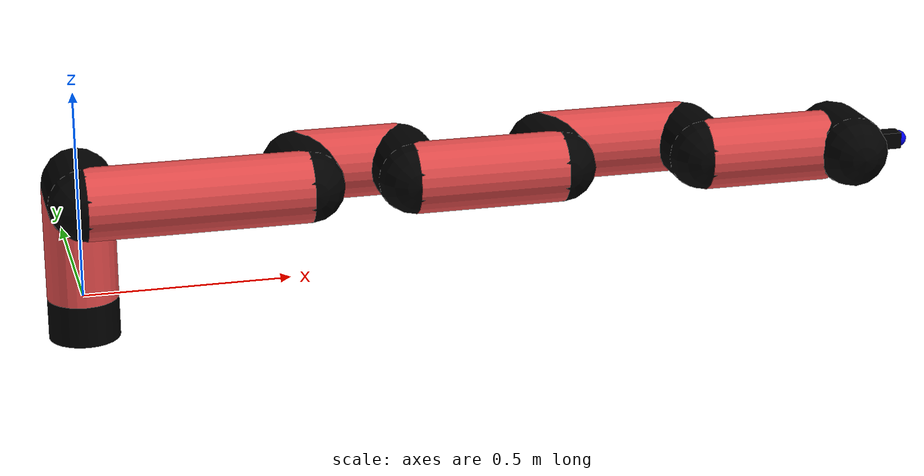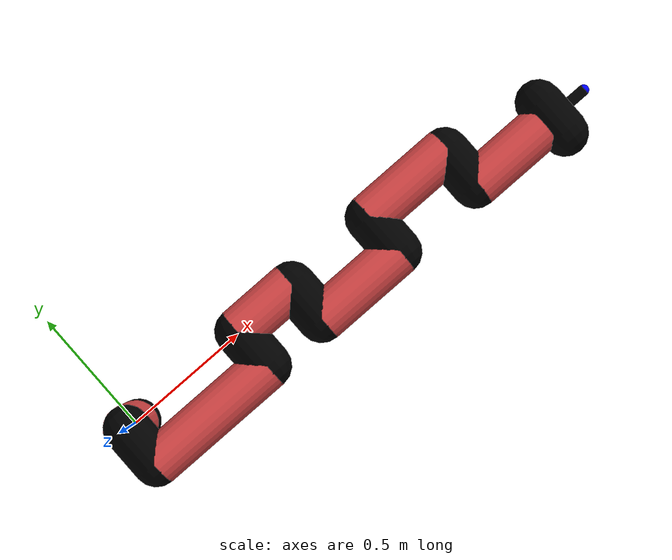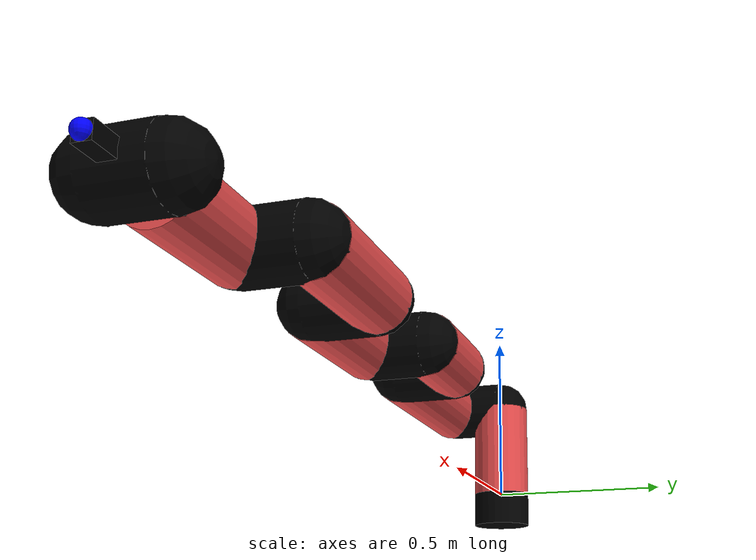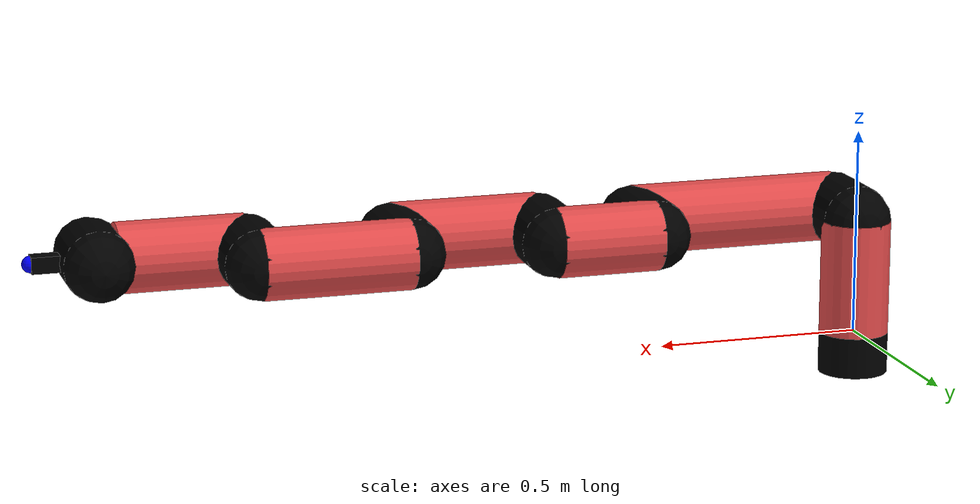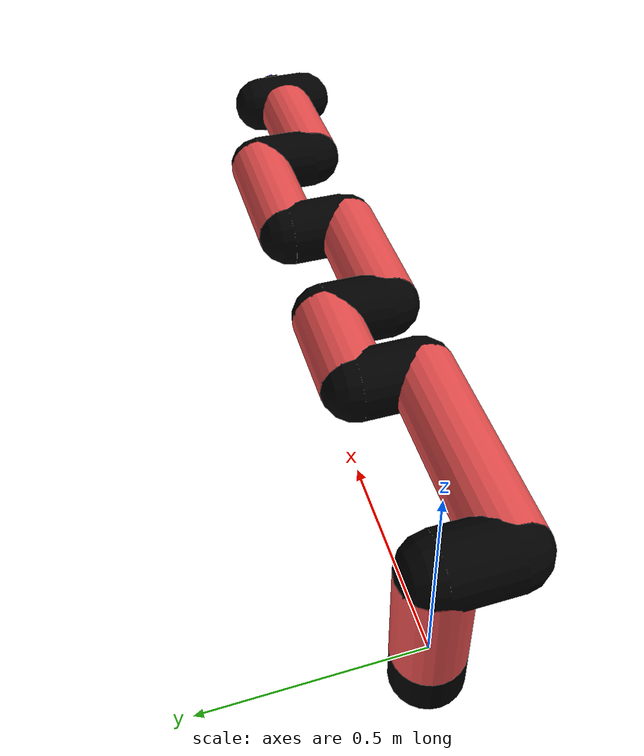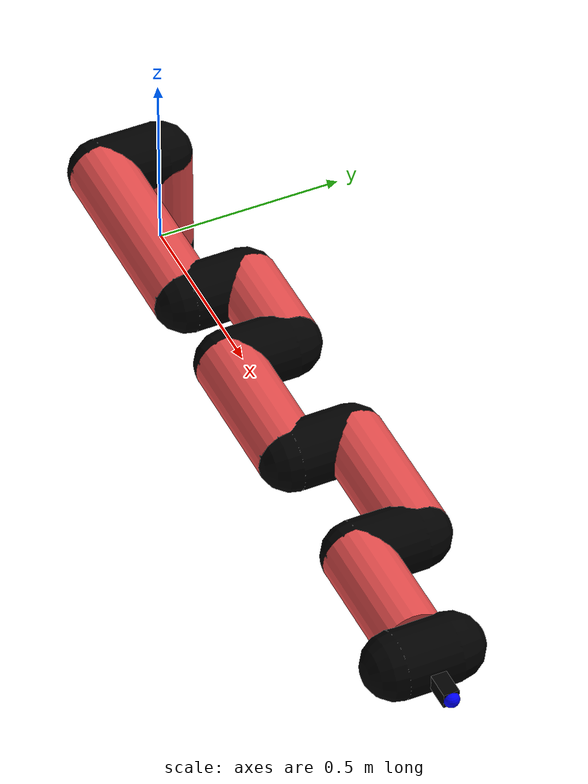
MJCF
<mujoco model="manipulator">
		<compiler angle="degree" coordinate="local" inertiafromgeom="auto" meshdir="meshes/"/>
		<option gravity="0 0 0" integrator="RK4" iterations="30" timestep="0.01"/>

		<default>
		<joint armature="1" limited="true" stiffness="10" damping="15" frictionloss="5.0"/>
		<geom conaffinity="1" condim="3" contype="1" friction=".5 .1 .1" margin="0.002"/>
		<motor ctrllimited="true"/>
		<position ctrllimited="true"/>
		</default>

		<asset>
		<texture builtin="gradient" height="100" rgb1="1.0 1.0 1.0" rgb2="1.0 1.0 1.0" type="skybox" width="100"/>
		<texture builtin="flat" height="32" name="arm_tex" rgb1="0.9 0.3 0.3" type="2d" width="32"/>
		<texture builtin="flat" height="32" name="gripper_tex" rgb1="0.0 0.0 0.0" type="cube" width="32"/>

		<material name="arm_mat" shininess="0.1" specular="0.1" texture="arm_tex"/>
		<material name="gripper_mat" shininess="1" specular="1" texture="gripper_tex"/>
		</asset>

		<worldbody>
		<light cutoff="45" diffuse=".8 .8 .8" dir="0 0.16 -1" directional="false" name="light" pos="0 -2.0 8.0" specular="0.3 0.3 0.3"/>

		<body name="base_link" pos="0 0 -0.1">
		<geom fromto="0 0 0 0 0 0.1" material="arm_mat" name="base_link" rgba="0.0 0.0 0.0 1" size="0.085" type="cylinder"/>
		</body>

		<body name="l1" pos="0 0 0">
<geom fromto="0 0 0 0 0 0.28" material="arm_mat" name="l1" rgba="0.9 0.3 0.3 1" size="0.085" type="cylinder"/>
<geom fromto="0 0 0.28 0 -0.16 0.28" material="arm_mat" name="l1_ex" rgba="0.0 0.0 0.0 1" size="0.085" type="capsule"/>
<joint axis="0 0 1" name="j1" pos="0 0 0" range="-90 90" damping="27.17" frictionloss="10.47"/>

<body name="l2" pos="0 -0.16 0.28">
<geom fromto="0 0 0 0.52 0 0" material="arm_mat" name="l2" rgba="0.9 0.3 0.3 1" size="0.085" type="cylinder"/>
<geom fromto="0.52 0 0 0.52 0.16 0" material="arm_mat" name="l2_ex" rgba="0.0 0.0 0.0 1" size="0.085" type="capsule"/>
<joint axis="0.0 1.0 0.0" name="j2" pos="0 0 0" range="-90 60" damping="33.5" frictionloss="10.63"/>

<body name="l3" pos="0.52 0.16 0">
<geom fromto="0 0 0 0.25 0 0" material="arm_mat" name="l3" rgba="0.9 0.3 0.3 1" size="0.085" type="cylinder"/>
<geom fromto="0.25 0 0 0.25 -0.16 0" material="arm_mat" name="l3_ex" rgba="0.0 0.0 0.0 1" size="0.085" type="capsule"/>
<joint axis="0.0 1.0 0.0" name="j3" pos="0 0 0" range="-30 60" damping="32.4" frictionloss="10.06"/>

<body name="l4" pos="0.25 -0.16 0">
<geom fromto="0 0 0 0.36 0 0" material="arm_mat" name="l4" rgba="0.9 0.3 0.3 1" size="0.085" type="cylinder"/>
<geom fromto="0.36 0 0 0.36 0.16 0" material="arm_mat" name="l4_ex" rgba="0.0 0.0 0.0 1" size="0.085" type="capsule"/>
<joint axis="0.0 1.0 0.0" name="j4" pos="0 0 0" range="-30 60" damping="31.54" frictionloss="10.12"/>

<body name="l5" pos="0.36 0.16 0">
<geom fromto="0 0 0 0.36 0 0" material="arm_mat" name="l5" rgba="0.9 0.3 0.3 1" size="0.085" type="cylinder"/>
<geom fromto="0.36 0 0 0.36 -0.16 0" material="arm_mat" name="l5_ex" rgba="0.0 0.0 0.0 1" size="0.085" type="capsule"/>
<joint axis="0.0 1.0 0.0" name="j5" pos="0 0 0" range="-30 60" damping="33.15" frictionloss="11.16"/>

<body name="l6" pos="0.36 -0.16 0">
<geom fromto="0 0 0 0.31 0 0" material="arm_mat" name="l6" rgba="0.9 0.3 0.3 1" size="0.085" type="cylinder"/>
<joint axis="0.0 1.0 0.0" name="j6" pos="0 0 0" range="-30 60" damping="29.48" frictionloss="10.4"/>

<body name="gripper" pos="0.31 0 0">
<geom fromto="0.05 -0.07 0 0.05 0.07 0" material="gripper_mat" name="gripper" rgba="0.0 0.0 0.0 1" size="0.085" type="capsule"/><joint axis="1 0 0" name="j7" pos="0 0 0" range="-90 90" damping="15" frictionloss="5.0"/><body name="finger" pos="0.1 0 0">
<geom fromto="0 0.0 0 0.1 0.0 0" material="gripper_mat" name="finger" rgba="0.0 0.0 0.0 1" size="0.020 0.06 0.06" type="box"/>
</body>
<site name="current" pos="0.2 0. 0.0" rgba="0. 0. 1.0 1" size="0.02" type="sphere"/>
</body>
</body>
</body>
</body>
</body>
</body>
</body>
</worldbody>
<actuator>
<motor ctrllimited="true" ctrlrange="-1.0 1.0" joint="j1" gear="78.41"/>
<motor ctrllimited="true" ctrlrange="-1.0 1.0" joint="j2" gear="61.27"/>
<motor ctrllimited="true" ctrlrange="-1.0 1.0" joint="j3" gear="68.5"/>
<motor ctrllimited="true" ctrlrange="-1.0 1.0" joint="j4" gear="80.54"/>
<motor ctrllimited="true" ctrlrange="-1.0 1.0" joint="j5" gear="87.7"/>
<motor ctrllimited="true" ctrlrange="-1.0 1.0" joint="j6" gear="96.18"/>
<motor ctrllimited="true" ctrlrange="-1.0 1.0" joint="j7" gear="80"/>
</actuator>
</mujoco>
